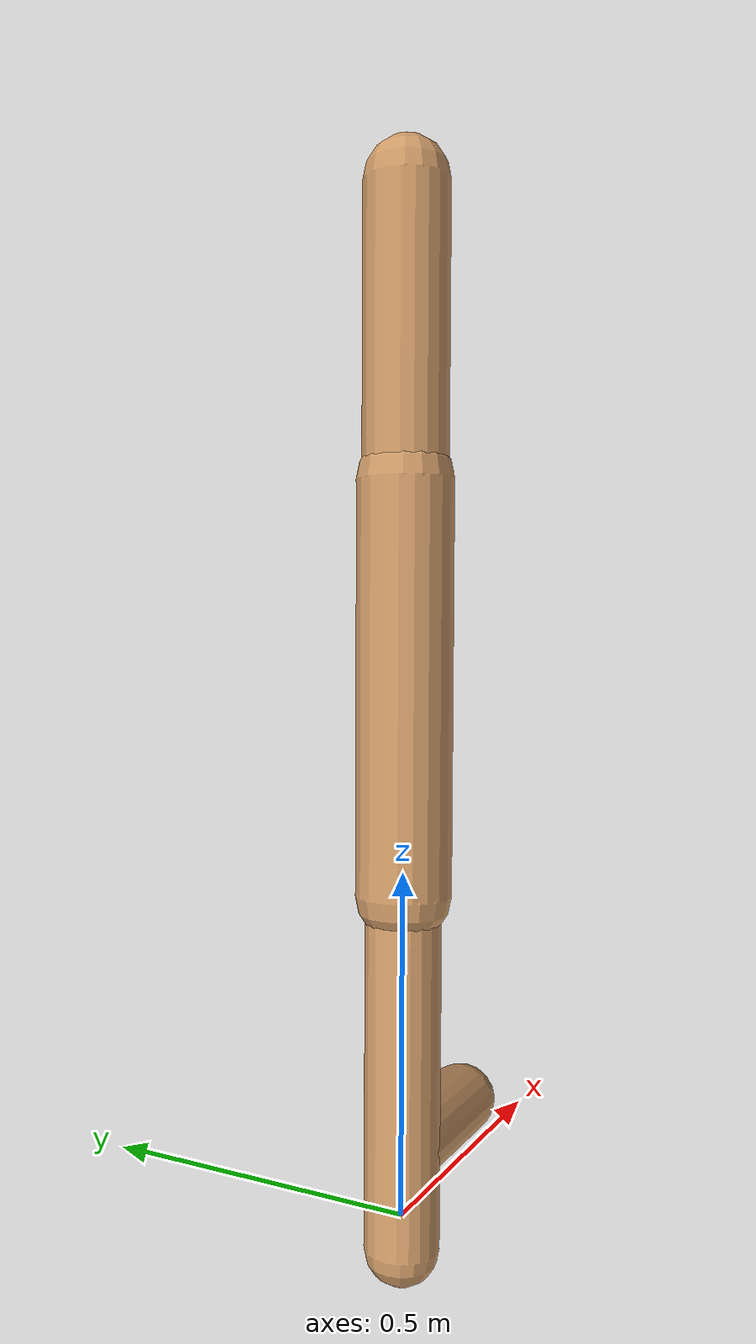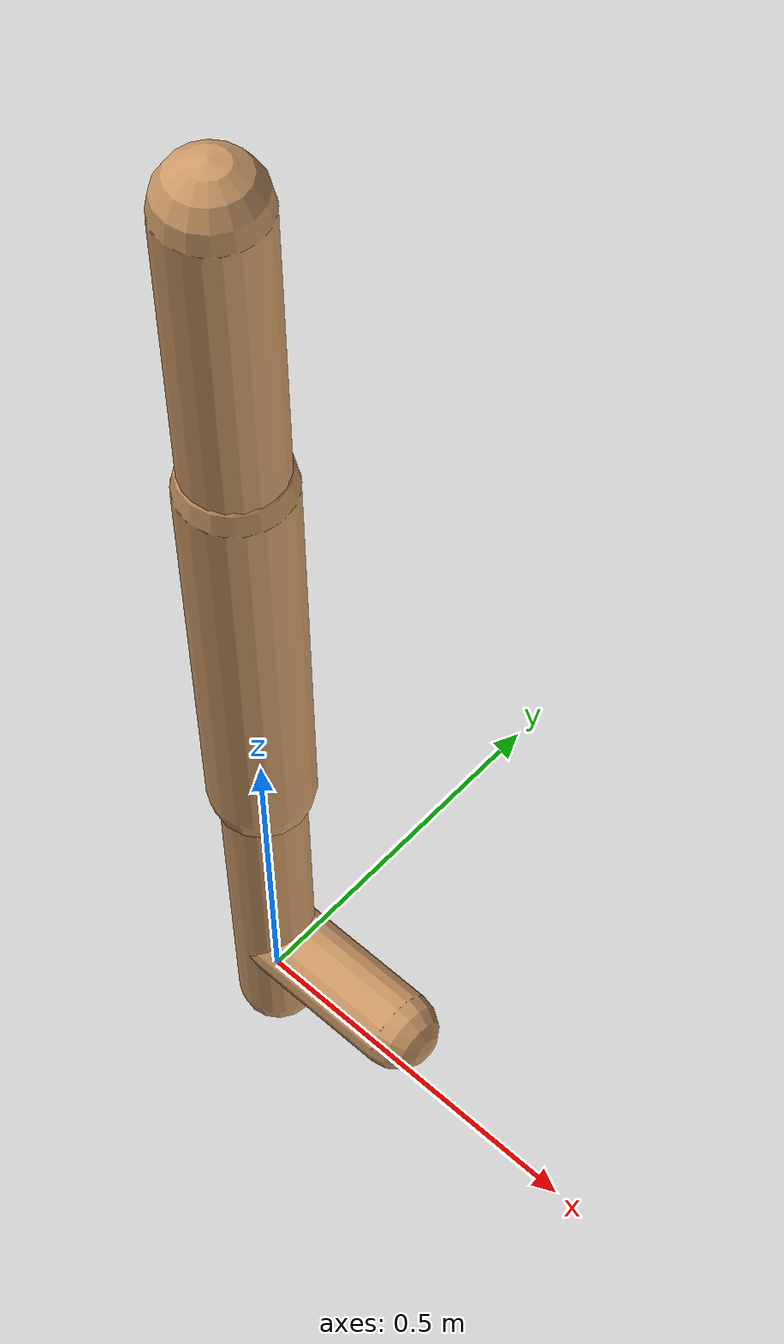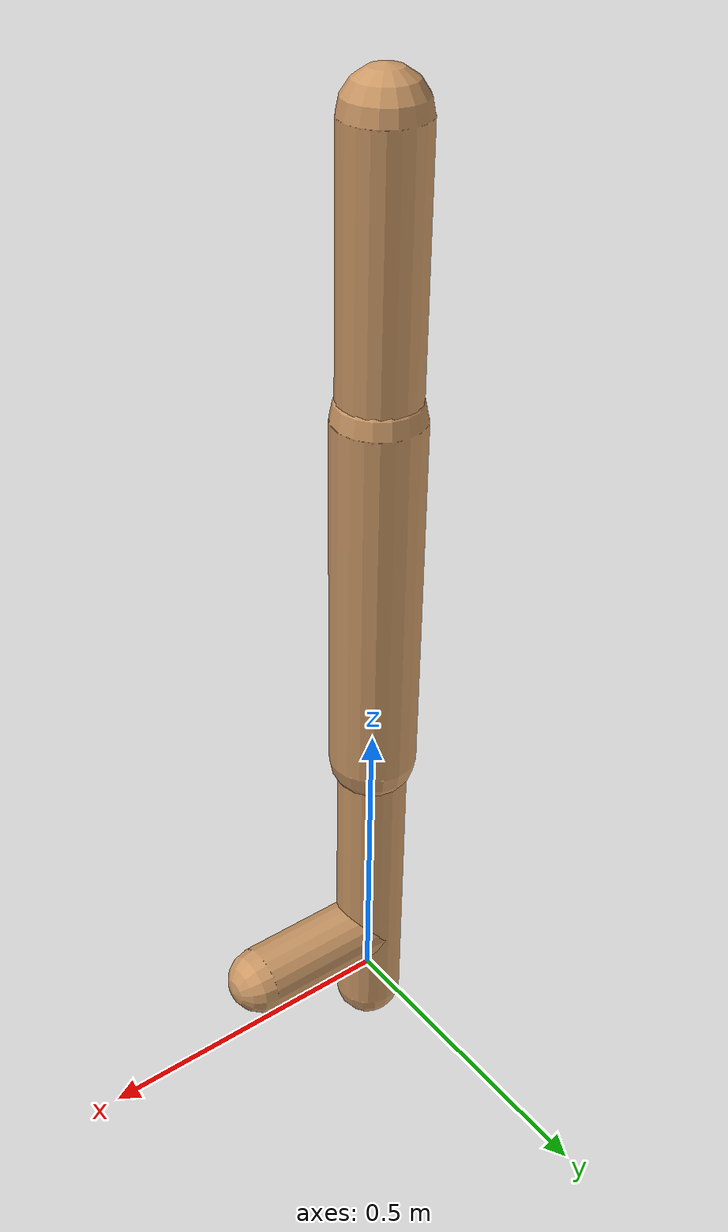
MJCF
<mujoco model="walker2d">
  <compiler angle="degree" coordinate="global" inertiafromgeom="true" />
  <default>
    <joint armature="0.01" damping=".1" limited="true" />
    <geom conaffinity="0" condim="3" contype="1" density="1000" friction="0.8 .1 .1" rgba="0.8 0.6 .4 1" />
  </default>
  <option integrator="RK4" timestep="0.002" />
  <worldbody>

    <body name="torso" pos="0 0 0.2780857658946888">
      <joint armature="0" axis="1 0 0" damping="0" limited="false" name="ignorex" pos="0 0 0" stiffness="0" type="slide" />
      <joint armature="0" axis="0 0 1" damping="0" limited="false" name="ignorez" pos="0 0 0" ref="1.25" stiffness="0" type="slide" />
      <joint armature="0" axis="0 1 0" damping="0" limited="false" name="ignorey" pos="0 0 0" stiffness="0" type="hinge" />
      <geom fromto="0 0 1.45 0 0 1.05" name="torso_geom" size="0.060709690991081124" type="capsule" />
      <body name="thigh">
        <joint axis="0 -1 0" name="thigh_joint" pos="0 0 1.05" range="-150 0" type="hinge" />
        <geom fromto="0.0 0.0 1.05 0.0 0.0 0.46827516352356846" name="thigh_geom" size="0.06832771606384234" type="capsule" />
        <body name="leg" pos="0.0 0.0 -0.13172483647643152">
          <joint axis="0 -1 0" name="leg_joint" pos="0 0 0.6" range="-150 0" type="hinge" />
          <geom fromto="0.0 0.0 0.6 0.0 0.0 -0.04636092941825726" name="leg_geom" size="0.05466217285107387" type="capsule" />
          <body name="foot" pos="0.0 0.0 -0.14636092941825726">
            <joint axis="0 -1 0" name="foot_joint" pos="0 0 0.1" range="-45 45" type="hinge" />
            <geom fromto="-0.0 0.0 0.1 0.22303624298931474 0.0 0.1" name="foot_geom" size="0.05388858018795026" type="capsule" />
          </body>
        </body>
      </body>

      <body name="thigh_left">
        <joint axis="0 -1 0" name="thigh_left_joint" pos="0 0 1.05" range="-150 0" type="hinge" />
        <geom fromto="0.0 0.0 1.05 0.0 0.0 0.46827516352356846" name="thigh_left_geom" rgba=".7 .3 .6 1" size="0.06832771606384234" type="capsule" />
        <body name="leg_left" pos="0.0 0.0 -0.13172483647643152">
          <joint axis="0 -1 0" name="leg_left_joint" pos="0 0 0.6" range="-150 0" type="hinge" />
          <geom fromto="0.0 0.0 0.6 0.0 0.0 -0.04636092941825726" name="leg_left_geom" rgba=".7 .3 .6 1" size="0.05466217285107387" type="capsule" />
          <body name="foot_left" pos="0.0 0.0 -0.14636092941825726">
            <joint axis="0 -1 0" name="foot_left_joint" pos="0 0 0.1" range="-45 45" type="hinge" />
            <geom fromto="-0.0 0.0 0.1 0.22303624298931474 0.0 0.1" name="foot_left_geom" rgba=".7 .3 .6 1" size="0.05388858018795026" type="capsule" />
          </body>
        </body>
      </body>
    </body>
  </worldbody>
  <actuator>

    <motor ctrllimited="true" ctrlrange="-1.0 1.0" gear="100" joint="thigh_joint" />
    <motor ctrllimited="true" ctrlrange="-1.0 1.0" gear="100" joint="leg_joint" />
    <motor ctrllimited="true" ctrlrange="-1.0 1.0" gear="100" joint="foot_joint" />
    <motor ctrllimited="true" ctrlrange="-1.0 1.0" gear="100" joint="thigh_left_joint" />
    <motor ctrllimited="true" ctrlrange="-1.0 1.0" gear="100" joint="leg_left_joint" />
    <motor ctrllimited="true" ctrlrange="-1.0 1.0" gear="100" joint="foot_left_joint" />

  </actuator>
</mujoco>
